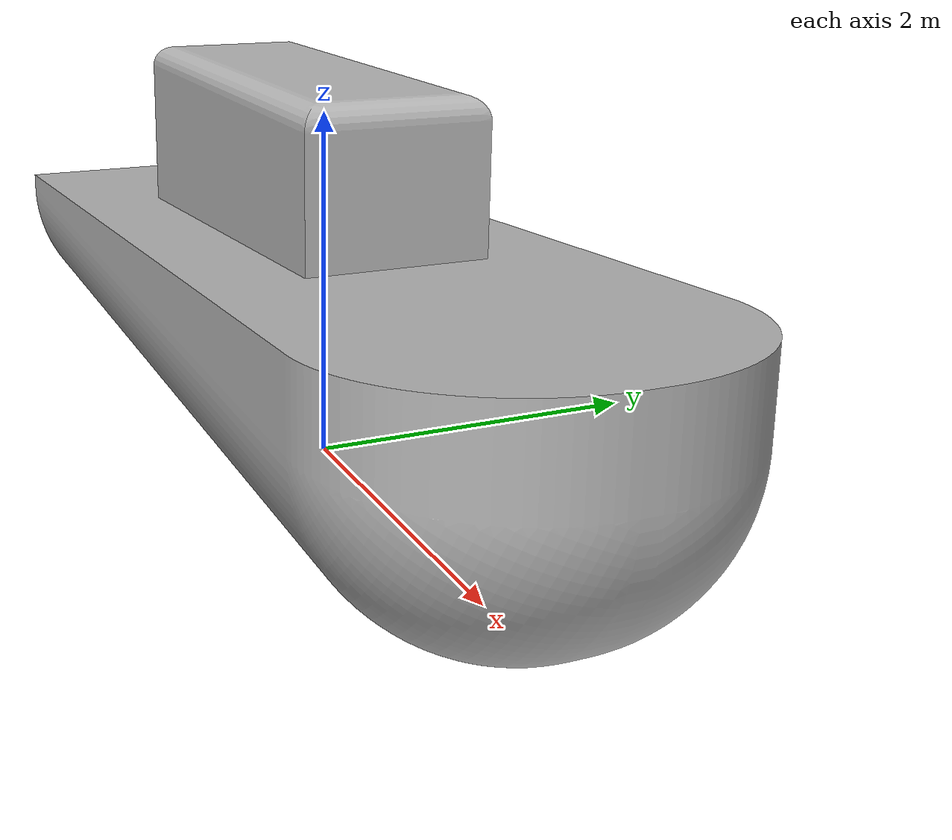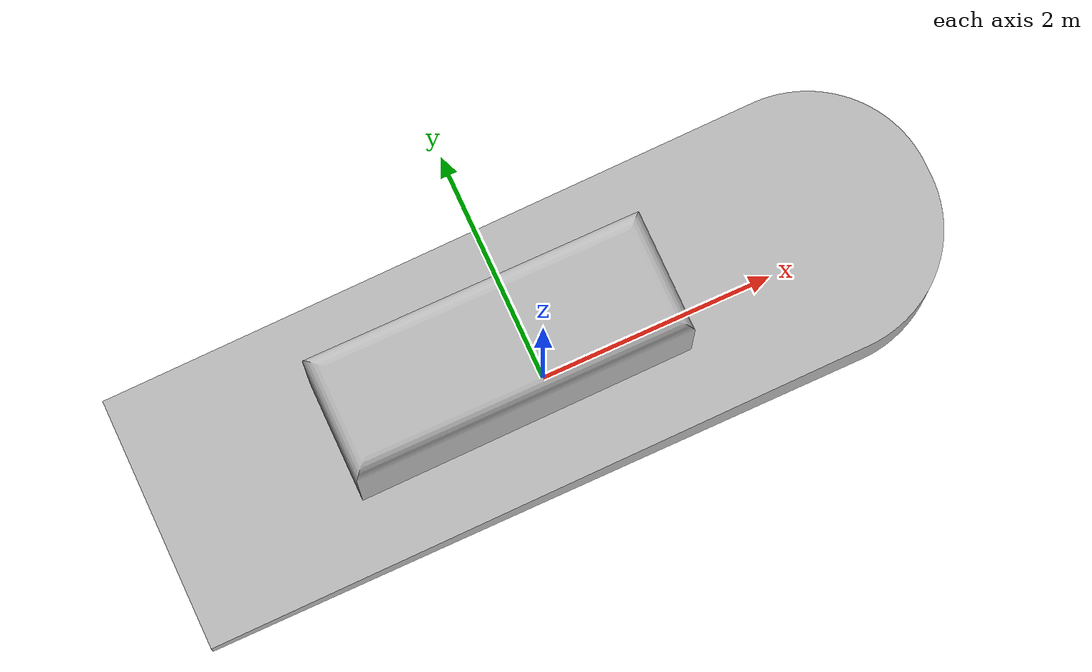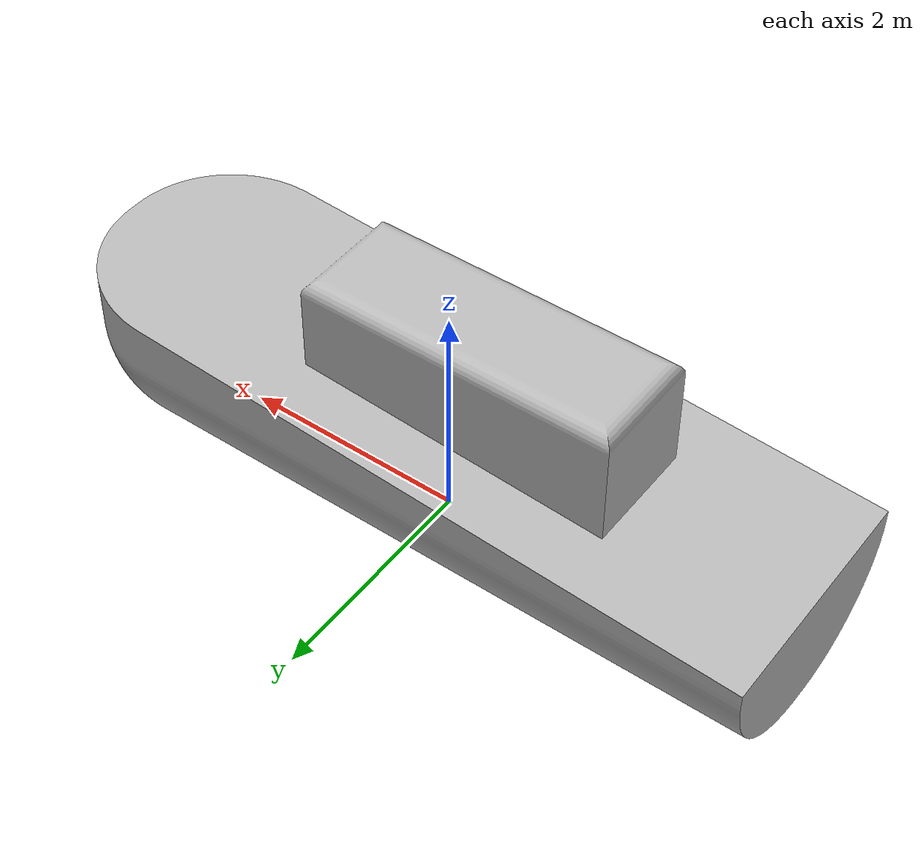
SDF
<?xml version="1.0"?>
<sdf version="1.9">
  <model name="small_motor_boat_vessel">
    <static>true</static>
    <link name="base_link">
      <visual name="visual">
        <geometry>
          <mesh>
            <uri>meshes/SmallMotorBoat.obj</uri>
            <scale>0.005 0.005 0.005</scale>
          </mesh>
        </geometry>
      </visual>
      <collision name="collision">
        <pose>0 0 1.1 0 0 0</pose>
        <geometry>
          <box>
            <size>6.5 2.1 2.2</size>
          </box>
        </geometry>
      </collision>
    </link>
  </model>
</sdf>
